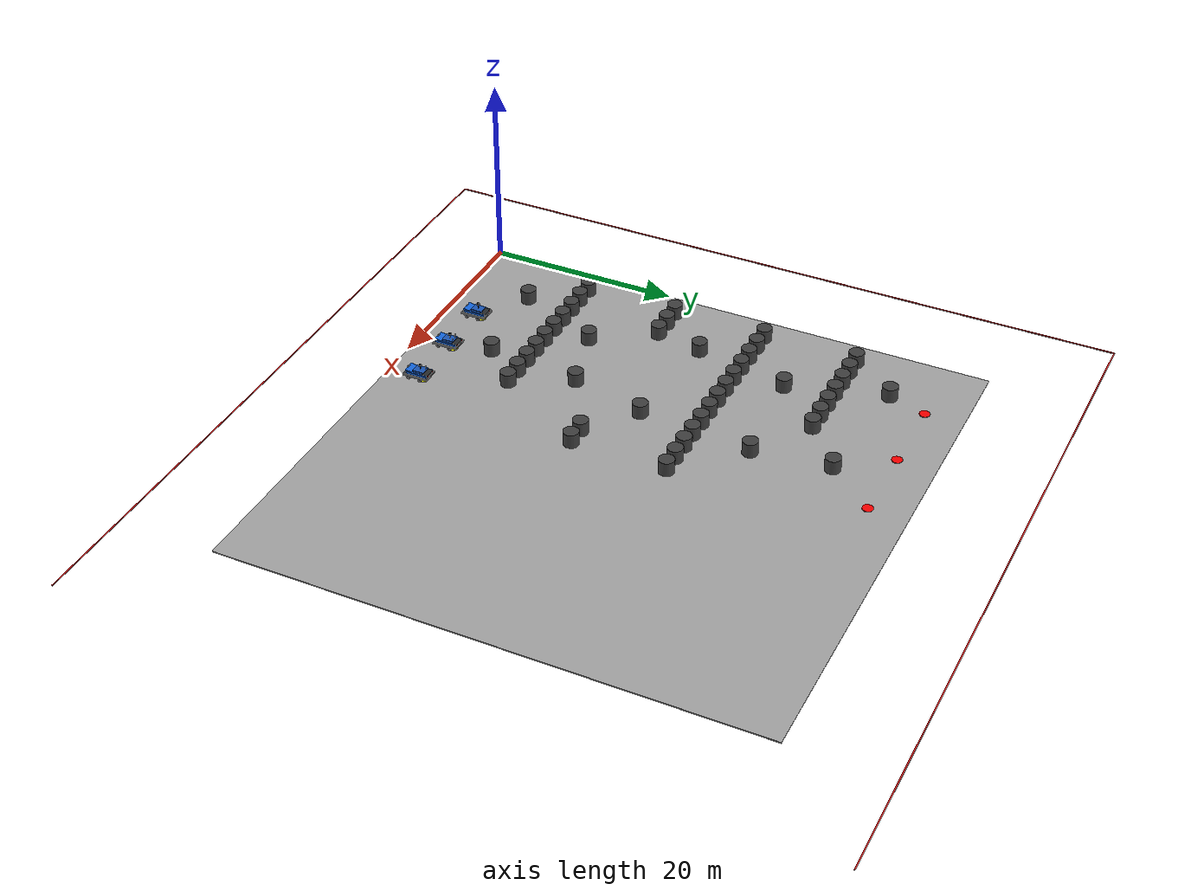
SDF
<sdf version="1.10">
 <world name="paper_corridors_6ugv">
  <model name="planner_workspace">
   <static>true</static>
   <pose>27.5 27.5 -0.05 0 0 0</pose>
   <link name="link">
    <collision name="collision"><geometry><box><size>75 75 0.10</size></box></geometry></collision>
    <visual name="visual">
     <geometry><box><size>55 55 0.10</size></box></geometry>
     <material><ambient>0.65 0.65 0.65 1.0</ambient><diffuse>0.65 0.65 0.65 1.0</diffuse></material>
    </visual>
   </link>
  </model>
  <model name="boundary_south">
   <static>true</static>
   <pose>27.5 -10.0 0.03 0 0 0</pose>
   <link name="link">
    <visual name="visual">
     <geometry><box><size>75.0 0.12 0.06</size></box></geometry>
     <material><ambient>0.85 0.1 0.1 1.0</ambient><diffuse>0.85 0.1 0.1 1.0</diffuse></material>
    </visual>
   </link>
  </model>
  <model name="boundary_north">
   <static>true</static>
   <pose>27.5 65.0 0.03 0 0 0</pose>
   <link name="link">
    <visual name="visual">
     <geometry><box><size>75.0 0.12 0.06</size></box></geometry>
     <material><ambient>0.85 0.1 0.1 1.0</ambient><diffuse>0.85 0.1 0.1 1.0</diffuse></material>
    </visual>
   </link>
  </model>
  <model name="boundary_west">
   <static>true</static>
   <pose>-10.0 27.5 0.03 0 0 0</pose>
   <link name="link">
    <visual name="visual">
     <geometry><box><size>0.12 75.0 0.06</size></box></geometry>
     <material><ambient>0.85 0.1 0.1 1.0</ambient><diffuse>0.85 0.1 0.1 1.0</diffuse></material>
    </visual>
   </link>
  </model>
  <model name="obstacle_000">
   <static>true</static>
   <pose>3.0 12.0 0.75 0 0 0</pose>
   <link name="link">
    <collision name="collision">
     <geometry><cylinder><radius>0.8</radius><length>1.5</length></cylinder></geometry>
    </collision>
    <visual name="visual">
     <geometry><cylinder><radius>0.8</radius><length>1.5</length></cylinder></geometry>
     <material><ambient>0.25 0.25 0.25 1.0</ambient><diffuse>0.25 0.25 0.25 1.0</diffuse></material>
    </visual>
   </link>
  </model>
  <model name="obstacle_001">
   <static>true</static>
   <pose>5.0 12.0 0.75 0 0 0</pose>
   <link name="link">
    <collision name="collision">
     <geometry><cylinder><radius>0.8</radius><length>1.5</length></cylinder></geometry>
    </collision>
    <visual name="visual">
     <geometry><cylinder><radius>0.8</radius><length>1.5</length></cylinder></geometry>
     <material><ambient>0.25 0.25 0.25 1.0</ambient><diffuse>0.25 0.25 0.25 1.0</diffuse></material>
    </visual>
   </link>
  </model>
  <model name="obstacle_002">
   <static>true</static>
   <pose>7.0 12.0 0.75 0 0 0</pose>
   <link name="link">
    <collision name="collision">
     <geometry><cylinder><radius>0.8</radius><length>1.5</length></cylinder></geometry>
    </collision>
    <visual name="visual">
     <geometry><cylinder><radius>0.8</radius><length>1.5</length></cylinder></geometry>
     <material><ambient>0.25 0.25 0.25 1.0</ambient><diffuse>0.25 0.25 0.25 1.0</diffuse></material>
    </visual>
   </link>
  </model>
  <model name="obstacle_003">
   <static>true</static>
   <pose>9.0 12.0 0.75 0 0 0</pose>
   <link name="link">
    <collision name="collision">
     <geometry><cylinder><radius>0.8</radius><length>1.5</length></cylinder></geometry>
    </collision>
    <visual name="visual">
     <geometry><cylinder><radius>0.8</radius><length>1.5</length></cylinder></geometry>
     <material><ambient>0.25 0.25 0.25 1.0</ambient><diffuse>0.25 0.25 0.25 1.0</diffuse></material>
    </visual>
   </link>
  </model>
  <model name="obstacle_004">
   <static>true</static>
   <pose>11.0 12.0 0.75 0 0 0</pose>
   <link name="link">
    <collision name="collision">
     <geometry><cylinder><radius>0.8</radius><length>1.5</length></cylinder></geometry>
    </collision>
    <visual name="visual">
     <geometry><cylinder><radius>0.8</radius><length>1.5</length></cylinder></geometry>
     <material><ambient>0.25 0.25 0.25 1.0</ambient><diffuse>0.25 0.25 0.25 1.0</diffuse></material>
    </visual>
   </link>
  </model>
  <model name="obstacle_005">
   <static>true</static>
   <pose>13.0 12.0 0.75 0 0 0</pose>
   <link name="link">
    <collision name="collision">
     <geometry><cylinder><radius>0.8</radius><length>1.5</length></cylinder></geometry>
    </collision>
    <visual name="visual">
     <geometry><cylinder><radius>0.8</radius><length>1.5</length></cylinder></geometry>
     <material><ambient>0.25 0.25 0.25 1.0</ambient><diffuse>0.25 0.25 0.25 1.0</diffuse></material>
    </visual>
   </link>
  </model>
  <model name="obstacle_006">
   <static>true</static>
   <pose>15.0 12.0 0.75 0 0 0</pose>
   <link name="link">
    <collision name="collision">
     <geometry><cylinder><radius>0.8</radius><length>1.5</length></cylinder></geometry>
    </collision>
    <visual name="visual">
     <geometry><cylinder><radius>0.8</radius><length>1.5</length></cylinder></geometry>
     <material><ambient>0.25 0.25 0.25 1.0</ambient><diffuse>0.25 0.25 0.25 1.0</diffuse></material>
    </visual>
   </link>
  </model>
  <model name="obstacle_007">
   <static>true</static>
   <pose>17.0 12.0 0.75 0 0 0</pose>
   <link name="link">
    <collision name="collision">
     <geometry><cylinder><radius>0.8</radius><length>1.5</length></cylinder></geometry>
    </collision>
    <visual name="visual">
     <geometry><cylinder><radius>0.8</radius><length>1.5</length></cylinder></geometry>
     <material><ambient>0.25 0.25 0.25 1.0</ambient><diffuse>0.25 0.25 0.25 1.0</diffuse></material>
    </visual>
   </link>
  </model>
  <model name="obstacle_008">
   <static>true</static>
   <pose>19.0 12.0 0.75 0 0 0</pose>
   <link name="link">
    <collision name="collision">
     <geometry><cylinder><radius>0.8</radius><length>1.5</length></cylinder></geometry>
    </collision>
    <visual name="visual">
     <geometry><cylinder><radius>0.8</radius><length>1.5</length></cylinder></geometry>
     <material><ambient>0.25 0.25 0.25 1.0</ambient><diffuse>0.25 0.25 0.25 1.0</diffuse></material>
    </visual>
   </link>
  </model>
  <model name="obstacle_009">
   <static>true</static>
   <pose>21.0 12.0 0.75 0 0 0</pose>
   <link name="link">
    <collision name="collision">
     <geometry><cylinder><radius>0.8</radius><length>1.5</length></cylinder></geometry>
    </collision>
    <visual name="visual">
     <geometry><cylinder><radius>0.8</radius><length>1.5</length></cylinder></geometry>
     <material><ambient>0.25 0.25 0.25 1.0</ambient><diffuse>0.25 0.25 0.25 1.0</diffuse></material>
    </visual>
   </link>
  </model>
  <model name="obstacle_019">
   <static>true</static>
   <pose>3.0 22.0 0.75 0 0 0</pose>
   <link name="link">
    <collision name="collision">
     <geometry><cylinder><radius>0.8</radius><length>1.5</length></cylinder></geometry>
    </collision>
    <visual name="visual">
     <geometry><cylinder><radius>0.8</radius><length>1.5</length></cylinder></geometry>
     <material><ambient>0.25 0.25 0.25 1.0</ambient><diffuse>0.25 0.25 0.25 1.0</diffuse></material>
    </visual>
   </link>
  </model>
  <model name="obstacle_020">
   <static>true</static>
   <pose>5.0 22.0 0.75 0 0 0</pose>
   <link name="link">
    <collision name="collision">
     <geometry><cylinder><radius>0.8</radius><length>1.5</length></cylinder></geometry>
    </collision>
    <visual name="visual">
     <geometry><cylinder><radius>0.8</radius><length>1.5</length></cylinder></geometry>
     <material><ambient>0.25 0.25 0.25 1.0</ambient><diffuse>0.25 0.25 0.25 1.0</diffuse></material>
    </visual>
   </link>
  </model>
  <model name="obstacle_021">
   <static>true</static>
   <pose>7.0 22.0 0.75 0 0 0</pose>
   <link name="link">
    <collision name="collision">
     <geometry><cylinder><radius>0.8</radius><length>1.5</length></cylinder></geometry>
    </collision>
    <visual name="visual">
     <geometry><cylinder><radius>0.8</radius><length>1.5</length></cylinder></geometry>
     <material><ambient>0.25 0.25 0.25 1.0</ambient><diffuse>0.25 0.25 0.25 1.0</diffuse></material>
    </visual>
   </link>
  </model>
  <model name="obstacle_022">
   <static>true</static>
   <pose>25.0 22.0 0.75 0 0 0</pose>
   <link name="link">
    <collision name="collision">
     <geometry><cylinder><radius>0.8</radius><length>1.5</length></cylinder></geometry>
    </collision>
    <visual name="visual">
     <geometry><cylinder><radius>0.8</radius><length>1.5</length></cylinder></geometry>
     <material><ambient>0.25 0.25 0.25 1.0</ambient><diffuse>0.25 0.25 0.25 1.0</diffuse></material>
    </visual>
   </link>
  </model>
  <model name="obstacle_023">
   <static>true</static>
   <pose>27.0 22.0 0.75 0 0 0</pose>
   <link name="link">
    <collision name="collision">
     <geometry><cylinder><radius>0.8</radius><length>1.5</length></cylinder></geometry>
    </collision>
    <visual name="visual">
     <geometry><cylinder><radius>0.8</radius><length>1.5</length></cylinder></geometry>
     <material><ambient>0.25 0.25 0.25 1.0</ambient><diffuse>0.25 0.25 0.25 1.0</diffuse></material>
    </visual>
   </link>
  </model>
  <model name="obstacle_036">
   <static>true</static>
   <pose>3.0 32.0 0.75 0 0 0</pose>
   <link name="link">
    <collision name="collision">
     <geometry><cylinder><radius>0.8</radius><length>1.5</length></cylinder></geometry>
    </collision>
    <visual name="visual">
     <geometry><cylinder><radius>0.8</radius><length>1.5</length></cylinder></geometry>
     <material><ambient>0.25 0.25 0.25 1.0</ambient><diffuse>0.25 0.25 0.25 1.0</diffuse></material>
    </visual>
   </link>
  </model>
  <model name="obstacle_037">
   <static>true</static>
   <pose>5.0 32.0 0.75 0 0 0</pose>
   <link name="link">
    <collision name="collision">
     <geometry><cylinder><radius>0.8</radius><length>1.5</length></cylinder></geometry>
    </collision>
    <visual name="visual">
     <geometry><cylinder><radius>0.8</radius><length>1.5</length></cylinder></geometry>
     <material><ambient>0.25 0.25 0.25 1.0</ambient><diffuse>0.25 0.25 0.25 1.0</diffuse></material>
    </visual>
   </link>
  </model>
  <model name="obstacle_038">
   <static>true</static>
   <pose>7.0 32.0 0.75 0 0 0</pose>
   <link name="link">
    <collision name="collision">
     <geometry><cylinder><radius>0.8</radius><length>1.5</length></cylinder></geometry>
    </collision>
    <visual name="visual">
     <geometry><cylinder><radius>0.8</radius><length>1.5</length></cylinder></geometry>
     <material><ambient>0.25 0.25 0.25 1.0</ambient><diffuse>0.25 0.25 0.25 1.0</diffuse></material>
    </visual>
   </link>
  </model>
  <model name="obstacle_039">
   <static>true</static>
   <pose>9.0 32.0 0.75 0 0 0</pose>
   <link name="link">
    <collision name="collision">
     <geometry><cylinder><radius>0.8</radius><length>1.5</length></cylinder></geometry>
    </collision>
    <visual name="visual">
     <geometry><cylinder><radius>0.8</radius><length>1.5</length></cylinder></geometry>
     <material><ambient>0.25 0.25 0.25 1.0</ambient><diffuse>0.25 0.25 0.25 1.0</diffuse></material>
    </visual>
   </link>
  </model>
  <model name="obstacle_040">
   <static>true</static>
   <pose>11.0 32.0 0.75 0 0 0</pose>
   <link name="link">
    <collision name="collision">
     <geometry><cylinder><radius>0.8</radius><length>1.5</length></cylinder></geometry>
    </collision>
    <visual name="visual">
     <geometry><cylinder><radius>0.8</radius><length>1.5</length></cylinder></geometry>
     <material><ambient>0.25 0.25 0.25 1.0</ambient><diffuse>0.25 0.25 0.25 1.0</diffuse></material>
    </visual>
   </link>
  </model>
  <model name="obstacle_041">
   <static>true</static>
   <pose>13.0 32.0 0.75 0 0 0</pose>
   <link name="link">
    <collision name="collision">
     <geometry><cylinder><radius>0.8</radius><length>1.5</length></cylinder></geometry>
    </collision>
    <visual name="visual">
     <geometry><cylinder><radius>0.8</radius><length>1.5</length></cylinder></geometry>
     <material><ambient>0.25 0.25 0.25 1.0</ambient><diffuse>0.25 0.25 0.25 1.0</diffuse></material>
    </visual>
   </link>
  </model>
  <model name="obstacle_042">
   <static>true</static>
   <pose>15.0 32.0 0.75 0 0 0</pose>
   <link name="link">
    <collision name="collision">
     <geometry><cylinder><radius>0.8</radius><length>1.5</length></cylinder></geometry>
    </collision>
    <visual name="visual">
     <geometry><cylinder><radius>0.8</radius><length>1.5</length></cylinder></geometry>
     <material><ambient>0.25 0.25 0.25 1.0</ambient><diffuse>0.25 0.25 0.25 1.0</diffuse></material>
    </visual>
   </link>
  </model>
  <model name="obstacle_043">
   <static>true</static>
   <pose>17.0 32.0 0.75 0 0 0</pose>
   <link name="link">
    <collision name="collision">
     <geometry><cylinder><radius>0.8</radius><length>1.5</length></cylinder></geometry>
    </collision>
    <visual name="visual">
     <geometry><cylinder><radius>0.8</radius><length>1.5</length></cylinder></geometry>
     <material><ambient>0.25 0.25 0.25 1.0</ambient><diffuse>0.25 0.25 0.25 1.0</diffuse></material>
    </visual>
   </link>
  </model>
  <model name="obstacle_044">
   <static>true</static>
   <pose>19.0 32.0 0.75 0 0 0</pose>
   <link name="link">
    <collision name="collision">
     <geometry><cylinder><radius>0.8</radius><length>1.5</length></cylinder></geometry>
    </collision>
    <visual name="visual">
     <geometry><cylinder><radius>0.8</radius><length>1.5</length></cylinder></geometry>
     <material><ambient>0.25 0.25 0.25 1.0</ambient><diffuse>0.25 0.25 0.25 1.0</diffuse></material>
    </visual>
   </link>
  </model>
  <model name="obstacle_045">
   <static>true</static>
   <pose>21.0 32.0 0.75 0 0 0</pose>
   <link name="link">
    <collision name="collision">
     <geometry><cylinder><radius>0.8</radius><length>1.5</length></cylinder></geometry>
    </collision>
    <visual name="visual">
     <geometry><cylinder><radius>0.8</radius><length>1.5</length></cylinder></geometry>
     <material><ambient>0.25 0.25 0.25 1.0</ambient><diffuse>0.25 0.25 0.25 1.0</diffuse></material>
    </visual>
   </link>
  </model>
  <model name="obstacle_046">
   <static>true</static>
   <pose>23.0 32.0 0.75 0 0 0</pose>
   <link name="link">
    <collision name="collision">
     <geometry><cylinder><radius>0.8</radius><length>1.5</length></cylinder></geometry>
    </collision>
    <visual name="visual">
     <geometry><cylinder><radius>0.8</radius><length>1.5</length></cylinder></geometry>
     <material><ambient>0.25 0.25 0.25 1.0</ambient><diffuse>0.25 0.25 0.25 1.0</diffuse></material>
    </visual>
   </link>
  </model>
  <model name="obstacle_047">
   <static>true</static>
   <pose>25.0 32.0 0.75 0 0 0</pose>
   <link name="link">
    <collision name="collision">
     <geometry><cylinder><radius>0.8</radius><length>1.5</length></cylinder></geometry>
    </collision>
    <visual name="visual">
     <geometry><cylinder><radius>0.8</radius><length>1.5</length></cylinder></geometry>
     <material><ambient>0.25 0.25 0.25 1.0</ambient><diffuse>0.25 0.25 0.25 1.0</diffuse></material>
    </visual>
   </link>
  </model>
  <model name="obstacle_048">
   <static>true</static>
   <pose>27.0 32.0 0.75 0 0 0</pose>
   <link name="link">
    <collision name="collision">
     <geometry><cylinder><radius>0.8</radius><length>1.5</length></cylinder></geometry>
    </collision>
    <visual name="visual">
     <geometry><cylinder><radius>0.8</radius><length>1.5</length></cylinder></geometry>
     <material><ambient>0.25 0.25 0.25 1.0</ambient><diffuse>0.25 0.25 0.25 1.0</diffuse></material>
    </visual>
   </link>
  </model>
  <model name="obstacle_054">
   <static>true</static>
   <pose>3.0 42.0 0.75 0 0 0</pose>
   <link name="link">
    <collision name="collision">
     <geometry><cylinder><radius>0.8</radius><length>1.5</length></cylinder></geometry>
    </collision>
    <visual name="visual">
     <geometry><cylinder><radius>0.8</radius><length>1.5</length></cylinder></geometry>
     <material><ambient>0.25 0.25 0.25 1.0</ambient><diffuse>0.25 0.25 0.25 1.0</diffuse></material>
    </visual>
   </link>
  </model>
  <model name="obstacle_055">
   <static>true</static>
   <pose>5.0 42.0 0.75 0 0 0</pose>
   <link name="link">
    <collision name="collision">
     <geometry><cylinder><radius>0.8</radius><length>1.5</length></cylinder></geometry>
    </collision>
    <visual name="visual">
     <geometry><cylinder><radius>0.8</radius><length>1.5</length></cylinder></geometry>
     <material><ambient>0.25 0.25 0.25 1.0</ambient><diffuse>0.25 0.25 0.25 1.0</diffuse></material>
    </visual>
   </link>
  </model>
  <model name="obstacle_056">
   <static>true</static>
   <pose>7.0 42.0 0.75 0 0 0</pose>
   <link name="link">
    <collision name="collision">
     <geometry><cylinder><radius>0.8</radius><length>1.5</length></cylinder></geometry>
    </collision>
    <visual name="visual">
     <geometry><cylinder><radius>0.8</radius><length>1.5</length></cylinder></geometry>
     <material><ambient>0.25 0.25 0.25 1.0</ambient><diffuse>0.25 0.25 0.25 1.0</diffuse></material>
    </visual>
   </link>
  </model>
  <model name="obstacle_057">
   <static>true</static>
   <pose>9.0 42.0 0.75 0 0 0</pose>
   <link name="link">
    <collision name="collision">
     <geometry><cylinder><radius>0.8</radius><length>1.5</length></cylinder></geometry>
    </collision>
    <visual name="visual">
     <geometry><cylinder><radius>0.8</radius><length>1.5</length></cylinder></geometry>
     <material><ambient>0.25 0.25 0.25 1.0</ambient><diffuse>0.25 0.25 0.25 1.0</diffuse></material>
    </visual>
   </link>
  </model>
  <model name="obstacle_058">
   <static>true</static>
   <pose>11.0 42.0 0.75 0 0 0</pose>
   <link name="link">
    <collision name="collision">
     <geometry><cylinder><radius>0.8</radius><length>1.5</length></cylinder></geometry>
    </collision>
    <visual name="visual">
     <geometry><cylinder><radius>0.8</radius><length>1.5</length></cylinder></geometry>
     <material><ambient>0.25 0.25 0.25 1.0</ambient><diffuse>0.25 0.25 0.25 1.0</diffuse></material>
    </visual>
   </link>
  </model>
  <model name="obstacle_059">
   <static>true</static>
   <pose>13.0 42.0 0.75 0 0 0</pose>
   <link name="link">
    <collision name="collision">
     <geometry><cylinder><radius>0.8</radius><length>1.5</length></cylinder></geometry>
    </collision>
    <visual name="visual">
     <geometry><cylinder><radius>0.8</radius><length>1.5</length></cylinder></geometry>
     <material><ambient>0.25 0.25 0.25 1.0</ambient><diffuse>0.25 0.25 0.25 1.0</diffuse></material>
    </visual>
   </link>
  </model>
  <model name="obstacle_060">
   <static>true</static>
   <pose>15.0 42.0 0.75 0 0 0</pose>
   <link name="link">
    <collision name="collision">
     <geometry><cylinder><radius>0.8</radius><length>1.5</length></cylinder></geometry>
    </collision>
    <visual name="visual">
     <geometry><cylinder><radius>0.8</radius><length>1.5</length></cylinder></geometry>
     <material><ambient>0.25 0.25 0.25 1.0</ambient><diffuse>0.25 0.25 0.25 1.0</diffuse></material>
    </visual>
   </link>
  </model>
  <model name="obstacle_071">
   <static>true</static>
   <pose>7.0 7.0 0.75 0 0 0</pose>
   <link name="link">
    <collision name="collision">
     <geometry><cylinder><radius>0.8</radius><length>1.5</length></cylinder></geometry>
    </collision>
    <visual name="visual">
     <geometry><cylinder><radius>0.8</radius><length>1.5</length></cylinder></geometry>
     <material><ambient>0.25 0.25 0.25 1.0</ambient><diffuse>0.25 0.25 0.25 1.0</diffuse></material>
    </visual>
   </link>
  </model>
  <model name="obstacle_072">
   <static>true</static>
   <pose>17.0 8.0 0.75 0 0 0</pose>
   <link name="link">
    <collision name="collision">
     <geometry><cylinder><radius>0.8</radius><length>1.5</length></cylinder></geometry>
    </collision>
    <visual name="visual">
     <geometry><cylinder><radius>0.8</radius><length>1.5</length></cylinder></geometry>
     <material><ambient>0.25 0.25 0.25 1.0</ambient><diffuse>0.25 0.25 0.25 1.0</diffuse></material>
    </visual>
   </link>
  </model>
  <model name="obstacle_075">
   <static>true</static>
   <pose>11.0 16.0 0.75 0 0 0</pose>
   <link name="link">
    <collision name="collision">
     <geometry><cylinder><radius>0.8</radius><length>1.5</length></cylinder></geometry>
    </collision>
    <visual name="visual">
     <geometry><cylinder><radius>0.8</radius><length>1.5</length></cylinder></geometry>
     <material><ambient>0.25 0.25 0.25 1.0</ambient><diffuse>0.25 0.25 0.25 1.0</diffuse></material>
    </visual>
   </link>
  </model>
  <model name="obstacle_076">
   <static>true</static>
   <pose>18.0 18.0 0.75 0 0 0</pose>
   <link name="link">
    <collision name="collision">
     <geometry><cylinder><radius>0.8</radius><length>1.5</length></cylinder></geometry>
    </collision>
    <visual name="visual">
     <geometry><cylinder><radius>0.8</radius><length>1.5</length></cylinder></geometry>
     <material><ambient>0.25 0.25 0.25 1.0</ambient><diffuse>0.25 0.25 0.25 1.0</diffuse></material>
    </visual>
   </link>
  </model>
  <model name="obstacle_079">
   <static>true</static>
   <pose>8.0 27.0 0.75 0 0 0</pose>
   <link name="link">
    <collision name="collision">
     <geometry><cylinder><radius>0.8</radius><length>1.5</length></cylinder></geometry>
    </collision>
    <visual name="visual">
     <geometry><cylinder><radius>0.8</radius><length>1.5</length></cylinder></geometry>
     <material><ambient>0.25 0.25 0.25 1.0</ambient><diffuse>0.25 0.25 0.25 1.0</diffuse></material>
    </visual>
   </link>
  </model>
  <model name="obstacle_080">
   <static>true</static>
   <pose>20.0 26.0 0.75 0 0 0</pose>
   <link name="link">
    <collision name="collision">
     <geometry><cylinder><radius>0.8</radius><length>1.5</length></cylinder></geometry>
    </collision>
    <visual name="visual">
     <geometry><cylinder><radius>0.8</radius><length>1.5</length></cylinder></geometry>
     <material><ambient>0.25 0.25 0.25 1.0</ambient><diffuse>0.25 0.25 0.25 1.0</diffuse></material>
    </visual>
   </link>
  </model>
  <model name="obstacle_084">
   <static>true</static>
   <pose>10.0 37.0 0.75 0 0 0</pose>
   <link name="link">
    <collision name="collision">
     <geometry><cylinder><radius>0.8</radius><length>1.5</length></cylinder></geometry>
    </collision>
    <visual name="visual">
     <geometry><cylinder><radius>0.8</radius><length>1.5</length></cylinder></geometry>
     <material><ambient>0.25 0.25 0.25 1.0</ambient><diffuse>0.25 0.25 0.25 1.0</diffuse></material>
    </visual>
   </link>
  </model>
  <model name="obstacle_085">
   <static>true</static>
   <pose>21.0 38.0 0.75 0 0 0</pose>
   <link name="link">
    <collision name="collision">
     <geometry><cylinder><radius>0.8</radius><length>1.5</length></cylinder></geometry>
    </collision>
    <visual name="visual">
     <geometry><cylinder><radius>0.8</radius><length>1.5</length></cylinder></geometry>
     <material><ambient>0.25 0.25 0.25 1.0</ambient><diffuse>0.25 0.25 0.25 1.0</diffuse></material>
    </visual>
   </link>
  </model>
  <model name="obstacle_088">
   <static>true</static>
   <pose>7.0 47.0 0.75 0 0 0</pose>
   <link name="link">
    <collision name="collision">
     <geometry><cylinder><radius>0.8</radius><length>1.5</length></cylinder></geometry>
    </collision>
    <visual name="visual">
     <geometry><cylinder><radius>0.8</radius><length>1.5</length></cylinder></geometry>
     <material><ambient>0.25 0.25 0.25 1.0</ambient><diffuse>0.25 0.25 0.25 1.0</diffuse></material>
    </visual>
   </link>
  </model>
  <model name="obstacle_089">
   <static>true</static>
   <pose>20.0 46.0 0.75 0 0 0</pose>
   <link name="link">
    <collision name="collision">
     <geometry><cylinder><radius>0.8</radius><length>1.5</length></cylinder></geometry>
    </collision>
    <visual name="visual">
     <geometry><cylinder><radius>0.8</radius><length>1.5</length></cylinder></geometry>
     <material><ambient>0.25 0.25 0.25 1.0</ambient><diffuse>0.25 0.25 0.25 1.0</diffuse></material>
    </visual>
   </link>
  </model>
  <model name="start_0">
   <static>true</static>
   <pose>12.0 4.0 0.025 0 0 0</pose>
   <link name="link">
    <visual name="visual">
     <geometry><cylinder><radius>0.55</radius><length>0.05</length></cylinder></geometry>
     <material><ambient>1.0 1.0 0.0 1.0</ambient><diffuse>1.0 1.0 0.0 1.0</diffuse></material>
    </visual>
   </link>
  </model>
  <model name="start_1">
   <static>true</static>
   <pose>18.0 4.0 0.025 0 0 0</pose>
   <link name="link">
    <visual name="visual">
     <geometry><cylinder><radius>0.55</radius><length>0.05</length></cylinder></geometry>
     <material><ambient>1.0 1.0 0.0 1.0</ambient><diffuse>1.0 1.0 0.0 1.0</diffuse></material>
    </visual>
   </link>
  </model>
  <model name="start_2">
   <static>true</static>
   <pose>24.0 4.0 0.025 0 0 0</pose>
   <link name="link">
    <visual name="visual">
     <geometry><cylinder><radius>0.55</radius><length>0.05</length></cylinder></geometry>
     <material><ambient>1.0 1.0 0.0 1.0</ambient><diffuse>1.0 1.0 0.0 1.0</diffuse></material>
    </visual>
   </link>
  </model>
  <model name="goal_0">
   <static>true</static>
   <pose>8.0 51.0 0.025 0 0 0</pose>
   <link name="link">
    <visual name="visual">
     <geometry><cylinder><radius>0.55</radius><length>0.05</length></cylinder></geometry>
     <material><ambient>1.0 0.0 0.0 1.0</ambient><diffuse>1.0 0.0 0.0 1.0</diffuse></material>
    </visual>
   </link>
  </model>
  <model name="goal_1">
   <static>true</static>
   <pose>16.0 51.0 0.025 0 0 0</pose>
   <link name="link">
    <visual name="visual">
     <geometry><cylinder><radius>0.55</radius><length>0.05</length></cylinder></geometry>
     <material><ambient>1.0 0.0 0.0 1.0</ambient><diffuse>1.0 0.0 0.0 1.0</diffuse></material>
    </visual>
   </link>
  </model>
  <model name="goal_2">
   <static>true</static>
   <pose>24.0 51.0 0.025 0 0 0</pose>
   <link name="link">
    <visual name="visual">
     <geometry><cylinder><radius>0.55</radius><length>0.05</length></cylinder></geometry>
     <material><ambient>1.0 0.0 0.0 1.0</ambient><diffuse>1.0 0.0 0.0 1.0</diffuse></material>
    </visual>
   </link>
  </model>
  <include><uri>model://ugv_1</uri><name>ugv_1</name><pose>12.0 4.0 0.05 0 0 -1.5708</pose></include>
  <include><uri>model://ugv_2</uri><name>ugv_2</name><pose>18.0 4.0 0.05 0 0 -1.5708</pose></include>
  <include><uri>model://ugv_3</uri><name>ugv_3</name><pose>24.0 4.0 0.05 0 0 -1.5708</pose></include>
 </world>
</sdf>
